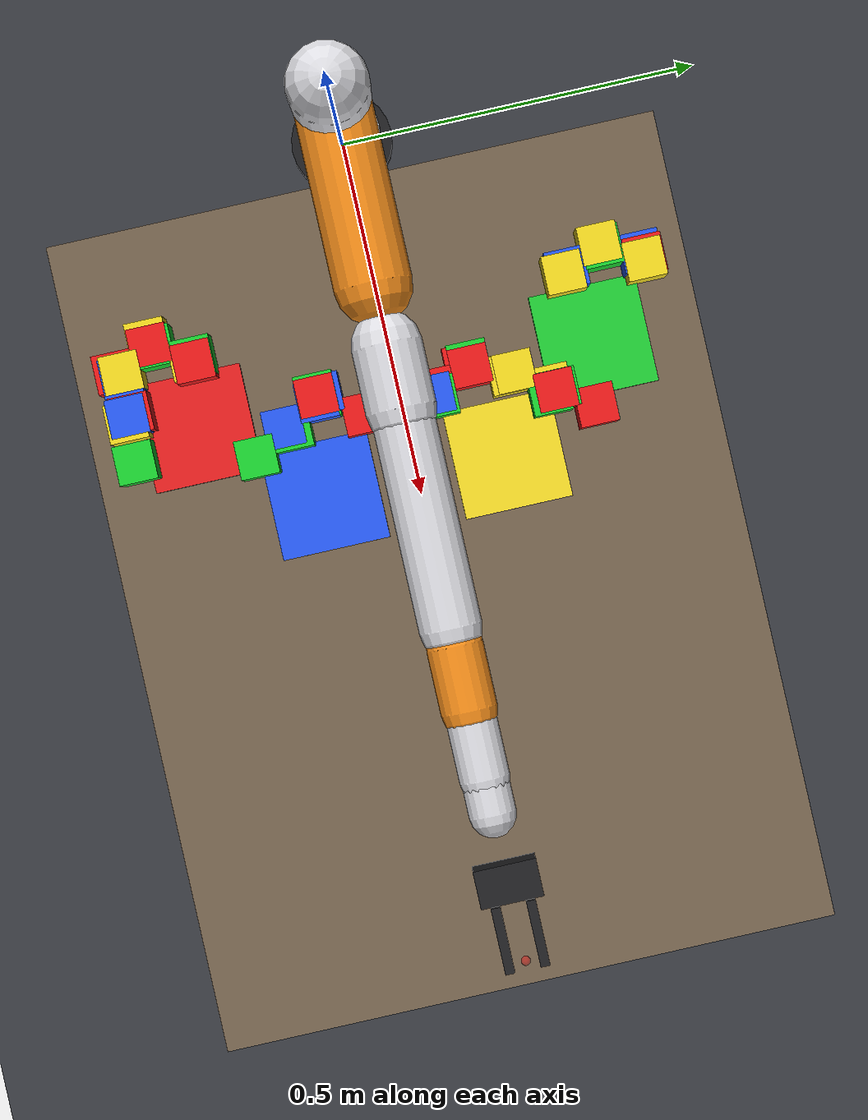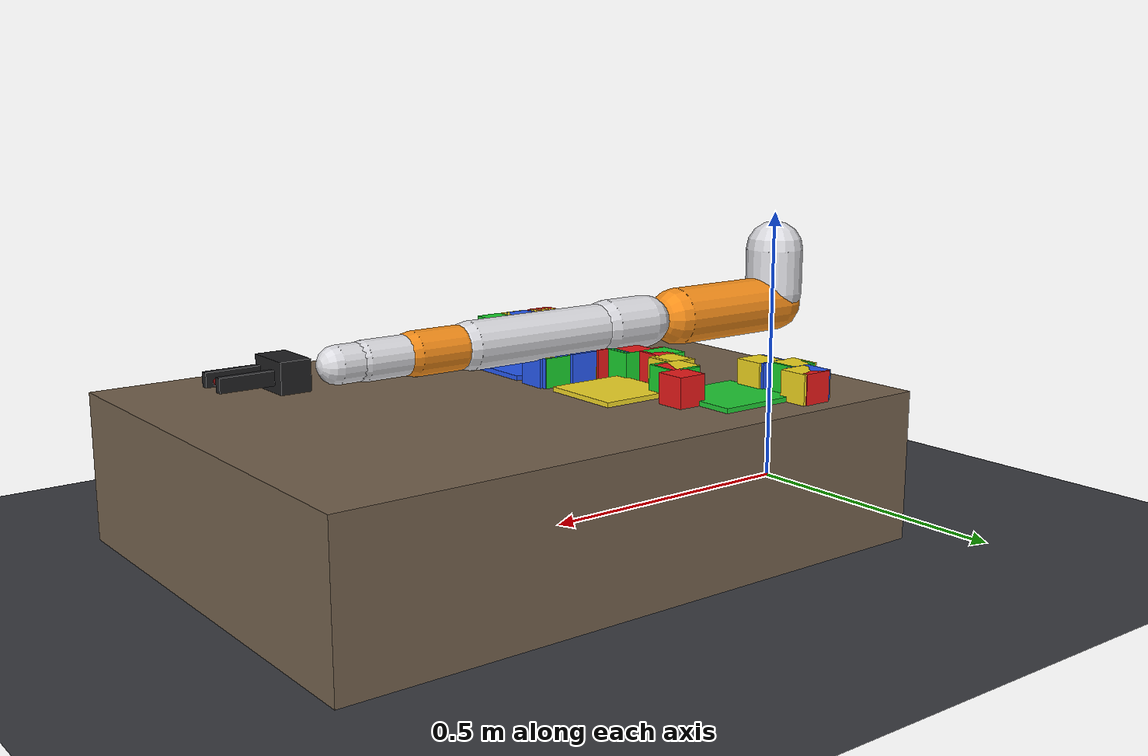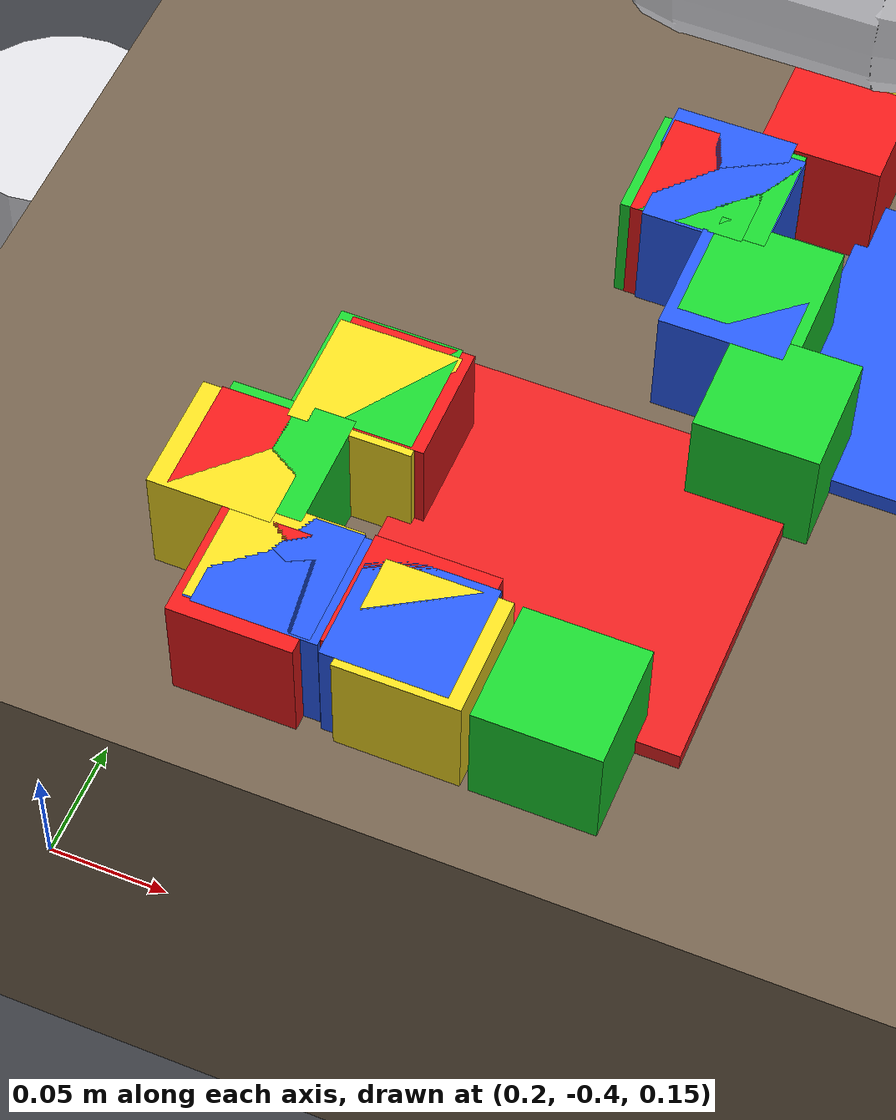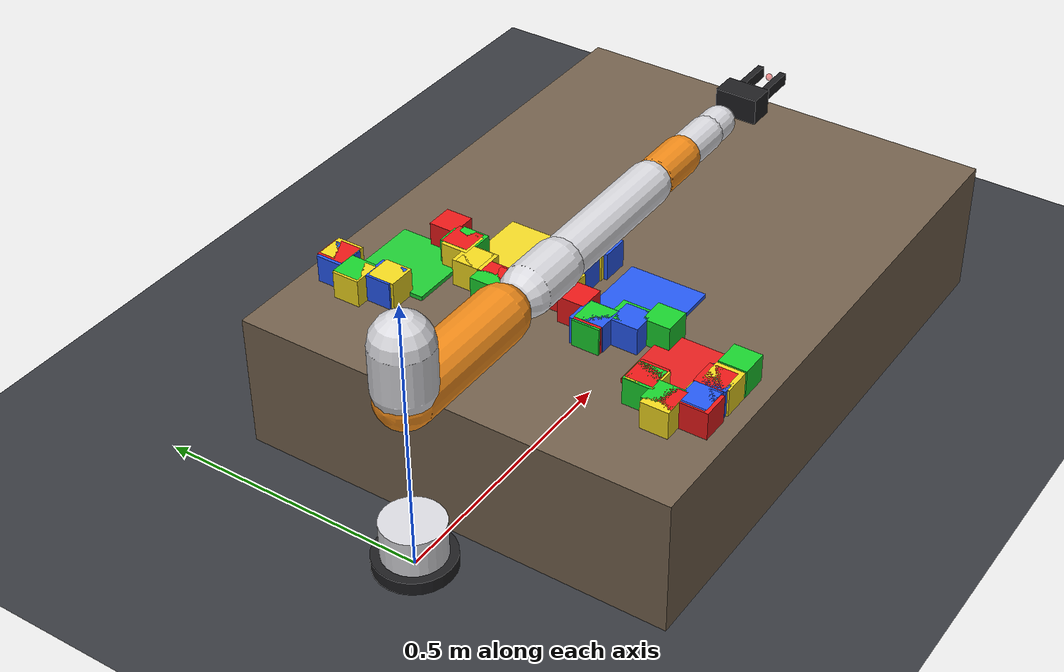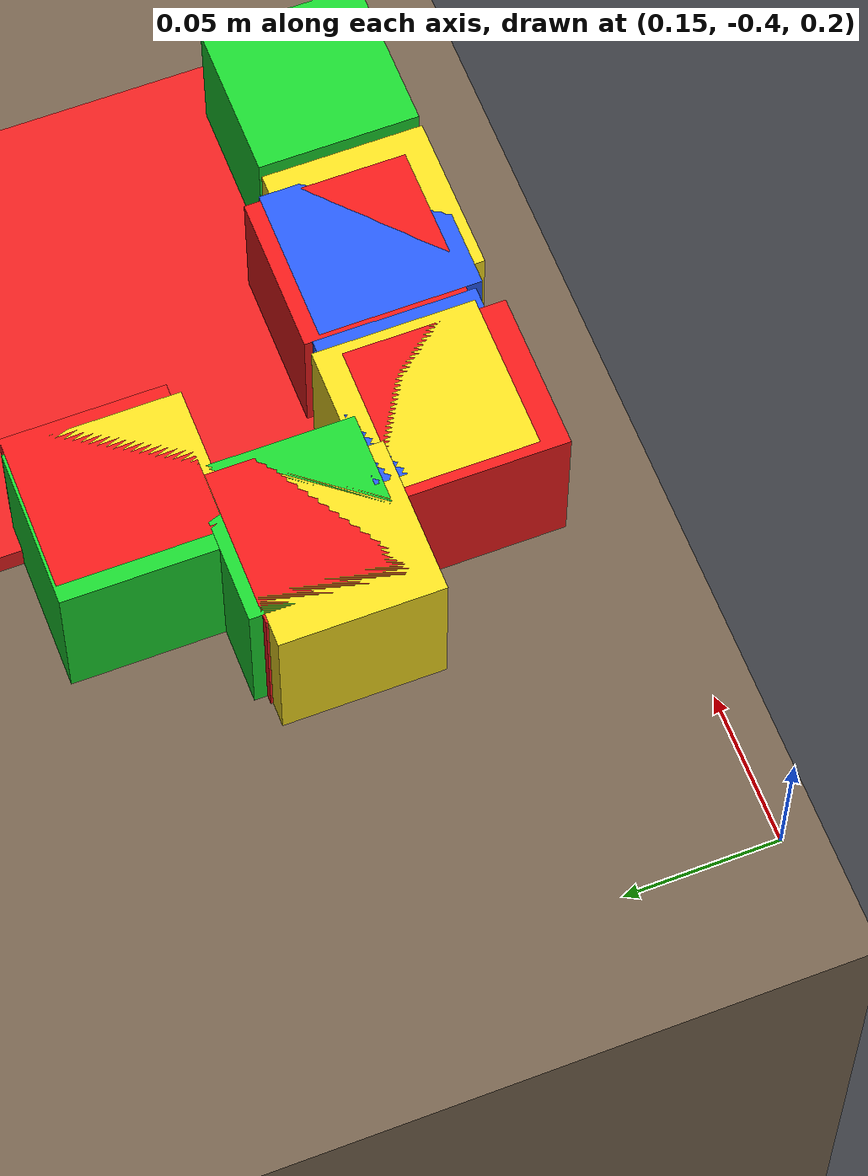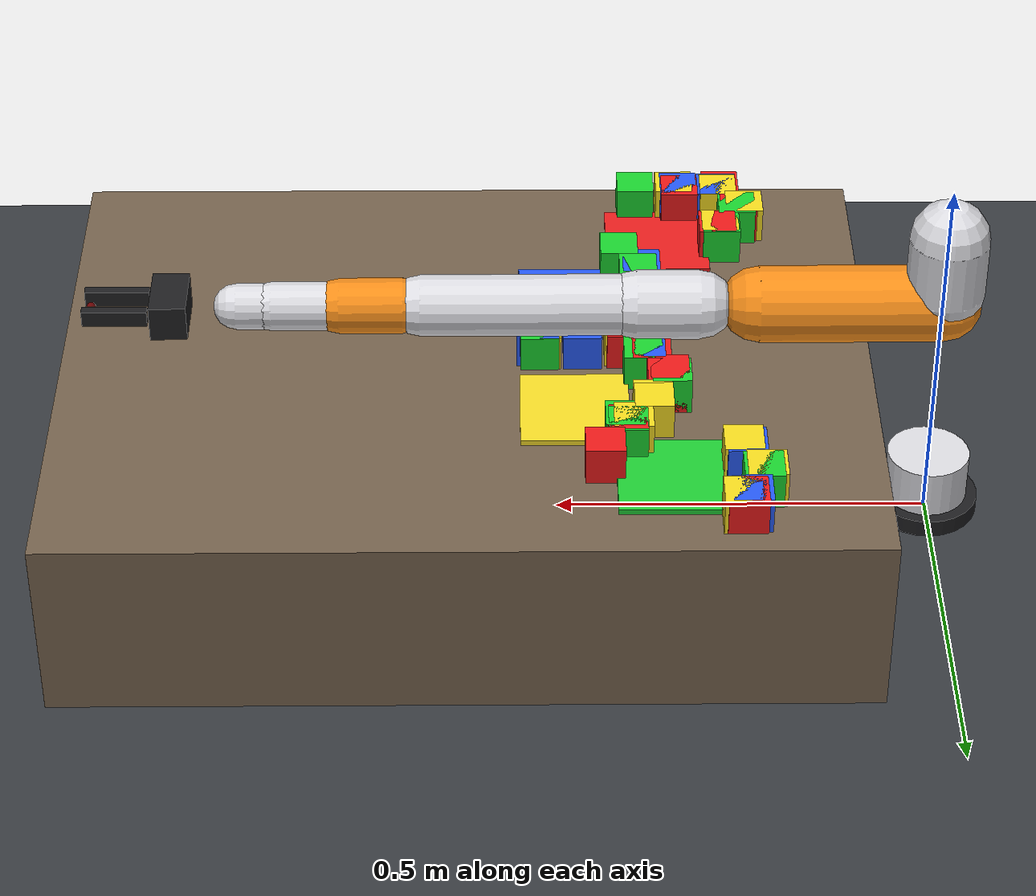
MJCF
marker is replaced by scene/compile_scene.py with N cube bodies.
  Final scenes are compiled to binary .mjb (no XML parsing at app startup).
-->
<mujoco model="panda_cube_sorter">
  <compiler angle="radian" autolimits="true" boundmass="0.01" boundinertia="1e-5"/>

  <option timestep="0.002" integrator="implicitfast" cone="pyramidal"
          solver="Newton" iterations="30" tolerance="1e-8"
          impratio="5" gravity="0 0 -9.81"/>

  <default>
    <joint damping="0.2" armature="0.05" frictionloss="0.15"/>
    <geom solref="0.008 1" solimp="0.95 0.99 0.001" friction="0.6 0.02 0.001" margin="0.0005"/>
    <default class="arm">
      <geom type="capsule" density="900" condim="3"
            contype="1" conaffinity="2"/>
      <joint damping="0.25" armature="0.05" frictionloss="0.2"/>
    </default>
    <default class="finger">
      <geom type="box" density="4000" friction="2.5 0.02 0.001" solref="0.010 1" solimp="0.95 0.99 0.001"
            contype="4" conaffinity="8"/>
      <joint type="slide" damping="60" armature="0.002" frictionloss="0.4"/>
    </default>
    <default class="cube">
      <geom type="box" size="0.025 0.025 0.025" mass="0.08" contype="1" conaffinity="7"
            friction="0.75 0.02 0.002" solref="0.006 1" solimp="0.96 0.995 0.0005"/>
    </default>
    <default class="zone">
      <geom type="box" contype="0" conaffinity="0" density="0"/>
    </default>
  </default>

  <visual>
    <headlight ambient="0.35 0.35 0.35" diffuse="0.55 0.55 0.55" specular="0.15 0.15 0.15"/>
  </visual>

  <asset>
    <texture type="skybox" builtin="flat" rgb1="0.10 0.11 0.13" rgb2="0.10 0.11 0.13" width="32" height="32"/>
    <material name="mat_floor" rgba="0.22 0.23 0.25 1" specular="0.1" shininess="0.2"/>
    <material name="mat_table" rgba="0.45 0.38 0.30 1" specular="0.15" shininess="0.3"/>
    <material name="mat_arm"   rgba="0.85 0.85 0.87 1" specular="0.4" shininess="0.6"/>
    <material name="mat_link2" rgba="0.95 0.55 0.10 1" specular="0.4" shininess="0.6"/>
    <material name="mat_hand"  rgba="0.12 0.12 0.13 1" specular="0.3" shininess="0.5"/>
  </asset>

  <worldbody>
    <light name="top"    pos="0.55 0.0 1.60" dir="0 0 -1" diffuse="0.75 0.75 0.75" specular="0.2 0.2 0.2" castshadow="false"/>
    <light name="fill"   pos="0.2 -0.8 1.20" dir="0.35 0.6 -1" diffuse="0.30 0.30 0.32" castshadow="false"/>
    <geom name="floor" type="plane" size="4 4 0.05" material="mat_floor"/>

    <!-- ============ Panda-class arm (base at origin, front = +x) ============ -->
    <body name="link0" pos="0 0 0">
      <geom name="l0_base" class="arm"  type="cylinder" size="0.055 0.045" pos="0 0 0.045" material="mat_arm"/>
      <geom name="l0_disc" class="arm"  type="cylinder" size="0.070 0.012" pos="0 0 0.012" material="mat_hand"/>
      <body name="link1" pos="0 0 0.333">
        <joint name="joint1" type="hinge" axis="0 0 1" range="-2.8973 2.8973"/>
        <geom name="l1" class="arm" type="capsule" fromto="0 0 0.02 0 0 0.10" size="0.052" material="mat_arm"/>
        <body name="link2" pos="0 0 0">
          <joint name="joint2" type="hinge" axis="0 1 0" range="-1.7628 1.7628"/>
          <geom name="l2" class="arm" type="capsule" fromto="0 0 0 0.24 0 0" size="0.050" material="mat_link2"/>
          <body name="link3" pos="0.316 0 0">
            <joint name="joint3" type="hinge" axis="1 0 0" range="-2.8973 2.8973"/>
            <geom name="l3" class="arm" type="capsule" fromto="0 0 0 0.0825 0 0" size="0.045" material="mat_arm"/>
            <body name="link4" pos="0.0825 0 0">
              <joint name="joint4" type="hinge" axis="0 1 0" range="-3.0718 3.0718"/><!-- simplified: elbow-up branch -->
              <geom name="l4" class="arm" type="capsule" fromto="0 0 0 0.28 0 0" size="0.040" material="mat_arm"/>
              <body name="link5" pos="0.302 0 0">
                <joint name="joint5" type="hinge" axis="1 0 0" range="-2.8973 2.8973"/>
                <geom name="l5" class="arm" type="capsule" fromto="0 0 0 0.0825 0 0" size="0.036" material="mat_link2"/>
                <body name="link6" pos="0.0825 0 0">
                  <joint name="joint6" type="hinge" axis="0 1 0" range="-0.0175 3.7525"/>
                  <geom name="l6" class="arm" type="capsule" fromto="0 0 0 0.088 0 0" size="0.032" material="mat_arm"/>
                  <body name="link7" pos="0.088 0 0">
                    <joint name="joint7" type="hinge" axis="1 0 0" range="-2.8973 2.8973"/>
                    <geom name="l7" class="arm" type="capsule" fromto="0 0 0 0.045 0 0" size="0.030" material="mat_arm"/>
                    <!-- flange + parallel gripper (approach = local +x) -->
                    <body name="hand" pos="0.107 0 0">
                      <geom name="hand_palm" type="box" size="0.024 0.040 0.024" pos="0.024 0 0" material="mat_hand" contype="1" conaffinity="2"/>
                      <site name="tcp" pos="0.126 0 0" size="0.006" rgba="1 0 0 0.4"/>
                      <camera name="cam_grip" pos="0.02 0 0.06" xyaxes="0 0 -1 0 1 0" fovy="90"/>
                      <body name="finger_l" pos="0.052 0.0225 0">
                        <joint name="finger_l_j" type="slide" axis="0 1 0" range="0 0.025"/>
                        <geom name="finger_l_g" size="0.042 0.006 0.011" pos="0.042 0 0" class="finger" material="mat_hand"/>
                      </body>
                      <body name="finger_r" pos="0.052 -0.0225 0">
                        <joint name="finger_r_j" type="slide" axis="0 1 0" range="0 0.025"/>
                        <geom name="finger_r_g" size="0.042 0.006 0.011" pos="0.042 0 0" class="finger" material="mat_hand"/>
                      </body>
                    </body>
                  </body>
                </body>
              </body>
            </body>
          </body>
        </body>
      </body>
    </body>

    <!-- ============ Table + sorting zones ============ -->
    <body name="table" pos="0.62 0 0.125">
      <geom name="table_g" type="box" size="0.53 0.40 0.125" material="mat_table" contype="1" conaffinity="5"/>
      <body name="zone_red"    pos="-0.26 -0.26 0.129">
        <geom name="zone_red_g"    size="0.070 0.070 0.004" rgba="0.90 0.12 0.12 1" class="zone"/>
      </body>
      <body name="zone_green"  pos="-0.26  0.26 0.129">
        <geom name="zone_green_g"  size="0.070 0.070 0.004" rgba="0.12 0.80 0.20 1" class="zone"/>
      </body>
      <body name="zone_blue"   pos="-0.14 -0.12 0.129">
        <geom name="zone_blue_g"   size="0.070 0.070 0.004" rgba="0.15 0.35 0.95 1" class="zone"/>
      </body>
      <body name="zone_yellow" pos="-0.14  0.12 0.129">
        <geom name="zone_yellow_g" size="0.070 0.070 0.004" rgba="0.95 0.85 0.15 1" class="zone"/>
      </body>
    </body>

    <!-- ============ Cubes (injected by compile_scene.py) ============ -->
    <body name="cube_red_0" pos="0.2784 -0.2437 0.2750">
      <freejoint name="free_red_0"/>
      <geom name="geom_red_0" class="cube" rgba="0.92 0.1 0.1 1.0"/>
      <site name="site_red_0" pos="0 0 0" size="0.004" rgba="0.92 0.1 0.1 0.6" type="sphere"/>
    </body>
    <body name="cube_green_1" pos="0.2732 -0.2428 0.2750">
      <freejoint name="free_green_1"/>
      <geom name="geom_green_1" class="cube" rgba="0.1 0.82 0.18 1.0"/>
      <site name="site_green_1" pos="0 0 0" size="0.004" rgba="0.1 0.82 0.18 0.6" type="sphere"/>
    </body>
    <body name="cube_blue_2" pos="0.5290 -0.0047 0.2750">
      <freejoint name="free_blue_2"/>
      <geom name="geom_blue_2" class="cube" rgba="0.15 0.35 0.95 1.0"/>
      <site name="site_blue_2" pos="0 0 0" size="0.004" rgba="0.15 0.35 0.95 0.6" type="sphere"/>
    </body>
    <body name="cube_yellow_3" pos="0.2778 0.3419 0.2750">
      <freejoint name="free_yellow_3"/>
      <geom name="geom_yellow_3" class="cube" rgba="0.95 0.85 0.12 1.0"/>
      <site name="site_yellow_3" pos="0 0 0" size="0.004" rgba="0.95 0.85 0.12 0.6" type="sphere"/>
    </body>
    <body name="cube_red_4" pos="0.2731 0.3431 0.2750">
      <freejoint name="free_red_4"/>
      <geom name="geom_red_4" class="cube" rgba="0.92 0.1 0.1 1.0"/>
      <site name="site_red_4" pos="0 0 0" size="0.004" rgba="0.92 0.1 0.1 0.6" type="sphere"/>
    </body>
    <body name="cube_green_5" pos="0.4147 -0.1916 0.2750">
      <freejoint name="free_green_5"/>
      <geom name="geom_green_5" class="cube" rgba="0.1 0.82 0.18 1.0"/>
      <site name="site_green_5" pos="0 0 0" size="0.004" rgba="0.1 0.82 0.18 0.6" type="sphere"/>
    </body>
    <body name="cube_blue_6" pos="0.5241 0.0040 0.2750">
      <freejoint name="free_blue_6"/>
      <geom name="geom_blue_6" class="cube" rgba="0.15 0.35 0.95 1.0"/>
      <site name="site_blue_6" pos="0 0 0" size="0.004" rgba="0.15 0.35 0.95 0.6" type="sphere"/>
    </body>
    <body name="cube_yellow_7" pos="0.2731 -0.3355 0.2750">
      <freejoint name="free_yellow_7"/>
      <geom name="geom_yellow_7" class="cube" rgba="0.95 0.85 0.12 1.0"/>
      <site name="site_yellow_7" pos="0 0 0" size="0.004" rgba="0.95 0.85 0.12 0.6" type="sphere"/>
    </body>
    <body name="cube_red_8" pos="0.4113 0.0007 0.2750">
      <freejoint name="free_red_8"/>
      <geom name="geom_red_8" class="cube" rgba="0.92 0.1 0.1 1.0"/>
      <site name="site_red_8" pos="0 0 0" size="0.004" rgba="0.92 0.1 0.1 0.6" type="sphere"/>
    </body>
    <body name="cube_green_9" pos="0.5239 0.0045 0.2750">
      <freejoint name="free_green_9"/>
      <geom name="geom_green_9" class="cube" rgba="0.1 0.82 0.18 1.0"/>
      <site name="site_green_9" pos="0 0 0" size="0.004" rgba="0.1 0.82 0.18 0.6" type="sphere"/>
    </body>
    <body name="cube_blue_10" pos="0.3282 -0.3398 0.2750">
      <freejoint name="free_blue_10"/>
      <geom name="geom_blue_10" class="cube" rgba="0.15 0.35 0.95 1.0"/>
      <site name="site_blue_10" pos="0 0 0" size="0.004" rgba="0.15 0.35 0.95 0.6" type="sphere"/>
    </body>
    <body name="cube_yellow_11" pos="0.3344 -0.3430 0.2750">
      <freejoint name="free_yellow_11"/>
      <geom name="geom_yellow_11" class="cube" rgba="0.95 0.85 0.12 1.0"/>
      <site name="site_yellow_11" pos="0 0 0" size="0.004" rgba="0.95 0.85 0.12 0.6" type="sphere"/>
    </body>
    <body name="cube_red_12" pos="0.4151 0.1961 0.2750">
      <freejoint name="free_red_12"/>
      <geom name="geom_red_12" class="cube" rgba="0.92 0.1 0.1 1.0"/>
      <site name="site_red_12" pos="0 0 0" size="0.004" rgba="0.92 0.1 0.1 0.6" type="sphere"/>
    </body>
    <body name="cube_green_13" pos="0.4146 0.1991 0.2750">
      <freejoint name="free_green_13"/>
      <geom name="geom_green_13" class="cube" rgba="0.1 0.82 0.18 1.0"/>
      <site name="site_green_13" pos="0 0 0" size="0.004" rgba="0.1 0.82 0.18 0.6" type="sphere"/>
    </body>
    <body name="cube_blue_14" pos="0.3871 0.0438 0.2750">
      <freejoint name="free_blue_14"/>
      <geom name="geom_blue_14" class="cube" rgba="0.15 0.35 0.95 1.0"/>
      <site name="site_blue_14" pos="0 0 0" size="0.004" rgba="0.15 0.35 0.95 0.6" type="sphere"/>
    </body>
    <body name="cube_yellow_15" pos="0.2723 0.2388 0.2750">
      <freejoint name="free_yellow_15"/>
      <geom name="geom_yellow_15" class="cube" rgba="0.95 0.85 0.12 1.0"/>
      <site name="site_yellow_15" pos="0 0 0" size="0.004" rgba="0.95 0.85 0.12 0.6" type="sphere"/>
    </body>
    <body name="cube_red_16" pos="0.3558 -0.1011 0.2750">
      <freejoint name="free_red_16"/>
      <geom name="geom_red_16" class="cube" rgba="0.92 0.1 0.1 1.0"/>
      <site name="site_red_16" pos="0 0 0" size="0.004" rgba="0.92 0.1 0.1 0.6" type="sphere"/>
    </body>
    <body name="cube_green_17" pos="0.3516 -0.1010 0.2750">
      <freejoint name="free_green_17"/>
      <geom name="geom_green_17" class="cube" rgba="0.1 0.82 0.18 1.0"/>
      <site name="site_green_17" pos="0 0 0" size="0.004" rgba="0.1 0.82 0.18 0.6" type="sphere"/>
    </body>
    <body name="cube_blue_18" pos="0.3611 -0.1022 0.2750">
      <freejoint name="free_blue_18"/>
      <geom name="geom_blue_18" class="cube" rgba="0.15 0.35 0.95 1.0"/>
      <site name="site_blue_18" pos="0 0 0" size="0.004" rgba="0.15 0.35 0.95 0.6" type="sphere"/>
    </body>
    <body name="cube_yellow_19" pos="0.2462 0.2902 0.2750">
      <freejoint name="free_yellow_19"/>
      <geom name="geom_yellow_19" class="cube" rgba="0.95 0.85 0.12 1.0"/>
      <site name="site_yellow_19" pos="0 0 0" size="0.004" rgba="0.95 0.85 0.12 0.6" type="sphere"/>
    </body>
    <body name="cube_red_20" pos="0.2469 -0.2938 0.2750">
      <freejoint name="free_red_20"/>
      <geom name="geom_red_20" class="cube" rgba="0.92 0.1 0.1 1.0"/>
      <site name="site_red_20" pos="0 0 0" size="0.004" rgba="0.92 0.1 0.1 0.6" type="sphere"/>
    </body>
    <body name="cube_green_21" pos="0.3905 0.0476 0.2750">
      <freejoint name="free_green_21"/>
      <geom name="geom_green_21" class="cube" rgba="0.1 0.82 0.18 1.0"/>
      <site name="site_green_21" pos="0 0 0" size="0.004" rgba="0.1 0.82 0.18 0.6" type="sphere"/>
    </body>
    <body name="cube_blue_22" pos="0.3858 -0.1503 0.2750">
      <freejoint name="free_blue_22"/>
      <geom name="geom_blue_22" class="cube" rgba="0.15 0.35 0.95 1.0"/>
      <site name="site_blue_22" pos="0 0 0" size="0.004" rgba="0.15 0.35 0.95 0.6" type="sphere"/>
    </body>
    <body name="cube_yellow_23" pos="0.2746 -0.2468 0.2750">
      <freejoint name="free_yellow_23"/>
      <geom name="geom_yellow_23" class="cube" rgba="0.95 0.85 0.12 1.0"/>
      <site name="site_yellow_23" pos="0 0 0" size="0.004" rgba="0.95 0.85 0.12 0.6" type="sphere"/>
    </body>
    <body name="cube_red_24" pos="0.3797 0.0469 0.2750">
      <freejoint name="free_red_24"/>
      <geom name="geom_red_24" class="cube" rgba="0.92 0.1 0.1 1.0"/>
      <site name="site_red_24" pos="0 0 0" size="0.004" rgba="0.92 0.1 0.1 0.6" type="sphere"/>
    </body>
    <body name="cube_green_25" pos="0.2496 -0.2898 0.2750">
      <freejoint name="free_green_25"/>
      <geom name="geom_green_25" class="cube" rgba="0.1 0.82 0.18 1.0"/>
      <site name="site_green_25" pos="0 0 0" size="0.004" rgba="0.1 0.82 0.18 0.6" type="sphere"/>
    </body>
    <body name="cube_blue_26" pos="0.2768 -0.3372 0.2750">
      <freejoint name="free_blue_26"/>
      <geom name="geom_blue_26" class="cube" rgba="0.15 0.35 0.95 1.0"/>
      <site name="site_blue_26" pos="0 0 0" size="0.004" rgba="0.15 0.35 0.95 0.6" type="sphere"/>
    </body>
    <body name="cube_yellow_27" pos="0.3804 0.1499 0.2750">
      <freejoint name="free_yellow_27"/>
      <geom name="geom_yellow_27" class="cube" rgba="0.95 0.85 0.12 1.0"/>
      <site name="site_yellow_27" pos="0 0 0" size="0.004" rgba="0.95 0.85 0.12 0.6" type="sphere"/>
    </body>
    <body name="cube_red_28" pos="0.3615 0.0967 0.2750">
      <freejoint name="free_red_28"/>
      <geom name="geom_red_28" class="cube" rgba="0.92 0.1 0.1 1.0"/>
      <site name="site_red_28" pos="0 0 0" size="0.004" rgba="0.92 0.1 0.1 0.6" type="sphere"/>
    </body>
    <body name="cube_green_29" pos="0.4180 0.1880 0.2750">
      <freejoint name="free_green_29"/>
      <geom name="geom_green_29" class="cube" rgba="0.1 0.82 0.18 1.0"/>
      <site name="site_green_29" pos="0 0 0" size="0.004" rgba="0.1 0.82 0.18 0.6" type="sphere"/>
    </body>
    <body name="cube_blue_30" pos="0.3549 -0.0945 0.2750">
      <freejoint name="free_blue_30"/>
      <geom name="geom_blue_30" class="cube" rgba="0.15 0.35 0.95 1.0"/>
      <site name="site_blue_30" pos="0 0 0" size="0.004" rgba="0.15 0.35 0.95 0.6" type="sphere"/>
    </body>
    <body name="cube_yellow_31" pos="0.2392 -0.2945 0.2750">
      <freejoint name="free_yellow_31"/>
      <geom name="geom_yellow_31" class="cube" rgba="0.95 0.85 0.12 1.0"/>
      <site name="site_yellow_31" pos="0 0 0" size="0.004" rgba="0.95 0.85 0.12 0.6" type="sphere"/>
    </body>
    <body name="cube_red_32" pos="0.2700 -0.3437 0.2750">
      <freejoint name="free_red_32"/>
      <geom name="geom_red_32" class="cube" rgba="0.92 0.1 0.1 1.0"/>
      <site name="site_red_32" pos="0 0 0" size="0.004" rgba="0.92 0.1 0.1 0.6" type="sphere"/>
    </body>
    <body name="cube_green_33" pos="0.2506 0.2923 0.2750">
      <freejoint name="free_green_33"/>
      <geom name="geom_green_33" class="cube" rgba="0.1 0.82 0.18 1.0"/>
      <site name="site_green_33" pos="0 0 0" size="0.004" rgba="0.1 0.82 0.18 0.6" type="sphere"/>
    </body>
    <body name="cube_blue_34" pos="0.2675 0.3400 0.2750">
      <freejoint name="free_blue_34"/>
      <geom name="geom_blue_34" class="cube" rgba="0.15 0.35 0.95 1.0"/>
      <site name="site_blue_34" pos="0 0 0" size="0.004" rgba="0.15 0.35 0.95 0.6" type="sphere"/>
    </body>
    <body name="cube_yellow_35" pos="0.5210 0.0016 0.2750">
      <freejoint name="free_yellow_35"/>
      <geom name="geom_yellow_35" class="cube" rgba="0.95 0.85 0.12 1.0"/>
      <site name="site_yellow_35" pos="0 0 0" size="0.004" rgba="0.95 0.85 0.12 0.6" type="sphere"/>
    </body>
    <body name="cube_red_36" pos="0.3267 -0.3347 0.2750">
      <freejoint name="free_red_36"/>
      <geom name="geom_red_36" class="cube" rgba="0.92 0.1 0.1 1.0"/>
      <site name="site_red_36" pos="0 0 0" size="0.004" rgba="0.92 0.1 0.1 0.6" type="sphere"/>
    </body>
    <body name="cube_green_37" pos="0.3553 0.0967 0.2750">
      <freejoint name="free_green_37"/>
      <geom name="geom_green_37" class="cube" rgba="0.1 0.82 0.18 1.0"/>
      <site name="site_green_37" pos="0 0 0" size="0.004" rgba="0.1 0.82 0.18 0.6" type="sphere"/>
    </body>
    <body name="cube_blue_38" pos="0.2735 -0.3363 0.2750">
      <freejoint name="free_blue_38"/>
      <geom name="geom_blue_38" class="cube" rgba="0.15 0.35 0.95 1.0"/>
      <site name="site_blue_38" pos="0 0 0" size="0.004" rgba="0.15 0.35 0.95 0.6" type="sphere"/>
    </body>
    <body name="cube_yellow_39" pos="0.4143 -0.0042 0.2750">
      <freejoint name="free_yellow_39"/>
      <geom name="geom_yellow_39" class="cube" rgba="0.95 0.85 0.12 1.0"/>
      <site name="site_yellow_39" pos="0 0 0" size="0.004" rgba="0.95 0.85 0.12 0.6" type="sphere"/>
    </body>
    <body name="cube_red_40" pos="0.3579 0.0909 0.2750">
      <freejoint name="free_red_40"/>
      <geom name="geom_red_40" class="cube" rgba="0.92 0.1 0.1 1.0"/>
      <site name="site_red_40" pos="0 0 0" size="0.004" rgba="0.92 0.1 0.1 0.6" type="sphere"/>
    </body>
    <body name="cube_green_41" pos="0.3905 -0.1418 0.2750">
      <freejoint name="free_green_41"/>
      <geom name="geom_green_41" class="cube" rgba="0.1 0.82 0.18 1.0"/>
      <site name="site_green_41" pos="0 0 0" size="0.004" rgba="0.1 0.82 0.18 0.6" type="sphere"/>
    </body>
    <body name="cube_blue_42" pos="0.4680 0.0033 0.2750">
      <freejoint name="free_blue_42"/>
      <geom name="geom_blue_42" class="cube" rgba="0.15 0.35 0.95 1.0"/>
      <site name="site_blue_42" pos="0 0 0" size="0.004" rgba="0.15 0.35 0.95 0.6" type="sphere"/>
    </body>
    <body name="cube_yellow_43" pos="0.4076 0.1915 0.2750">
      <freejoint name="free_yellow_43"/>
      <geom name="geom_yellow_43" class="cube" rgba="0.95 0.85 0.12 1.0"/>
      <site name="site_yellow_43" pos="0 0 0" size="0.004" rgba="0.95 0.85 0.12 0.6" type="sphere"/>
    </body>
    <body name="cube_red_44" pos="0.4445 0.2421 0.2750">
      <freejoint name="free_red_44"/>
      <geom name="geom_red_44" class="cube" rgba="0.92 0.1 0.1 1.0"/>
      <site name="site_red_44" pos="0 0 0" size="0.004" rgba="0.92 0.1 0.1 0.6" type="sphere"/>
    </body>
    <body name="cube_green_45" pos="0.3877 -0.3433 0.2750">
      <freejoint name="free_green_45"/>
      <geom name="geom_green_45" class="cube" rgba="0.1 0.82 0.18 1.0"/>
      <site name="site_green_45" pos="0 0 0" size="0.004" rgba="0.1 0.82 0.18 0.6" type="sphere"/>
    </body>
    <body name="cube_blue_46" pos="0.2684 0.2435 0.2750">
      <freejoint name="free_blue_46"/>
      <geom name="geom_blue_46" class="cube" rgba="0.15 0.35 0.95 1.0"/>
      <site name="site_blue_46" pos="0 0 0" size="0.004" rgba="0.15 0.35 0.95 0.6" type="sphere"/>
    </body>
    <body name="cube_yellow_47" pos="0.3812 0.1431 0.2750">
      <freejoint name="free_yellow_47"/>
      <geom name="geom_yellow_47" class="cube" rgba="0.95 0.85 0.12 1.0"/>
      <site name="site_yellow_47" pos="0 0 0" size="0.004" rgba="0.95 0.85 0.12 0.6" type="sphere"/>
    </body>
    <body name="cube_red_48" pos="0.3904 -0.0481 0.2750">
      <freejoint name="free_red_48"/>
      <geom name="geom_red_48" class="cube" rgba="0.92 0.1 0.1 1.0"/>
      <site name="site_red_48" pos="0 0 0" size="0.004" rgba="0.92 0.1 0.1 0.6" type="sphere"/>
    </body>
    <body name="cube_green_49" pos="0.3606 -0.0998 0.2750">
      <freejoint name="free_green_49"/>
      <geom name="geom_green_49" class="cube" rgba="0.1 0.82 0.18 1.0"/>
      <site name="site_green_49" pos="0 0 0" size="0.004" rgba="0.1 0.82 0.18 0.6" type="sphere"/>
    </body>

    <!-- ============ Cameras ============ -->
    <camera name="cam_event" pos="0.42 0 1.05" xyaxes="1 0 0 0 1 0" fovy="78"/>
    <camera name="cam_track" mode="targetbody" target="table" pos="1.45 -1.25 0.95" fovy="55"/>
  </worldbody>

  <tendon>
    <fixed name="grip_tendon">
      <joint joint="finger_l_j" coef="1"/>
      <joint joint="finger_r_j" coef="1"/>
    </fixed>
  </tendon>

  <actuator>
    <motor name="m1" joint="joint1" gear="1" ctrlrange="-87 87"/>
    <motor name="m2" joint="joint2" gear="1" ctrlrange="-87 87"/>
    <motor name="m3" joint="joint3" gear="1" ctrlrange="-87 87"/>
    <motor name="m4" joint="joint4" gear="1" ctrlrange="-87 87"/>
    <motor name="m5" joint="joint5" gear="1" ctrlrange="-12 12"/>
    <motor name="m6" joint="joint6" gear="1" ctrlrange="-12 12"/>
    <motor name="m7" joint="joint7" gear="1" ctrlrange="-12 12"/>
    <position name="grip_act" tendon="grip_tendon" kp="120" ctrlrange="0 0.05"/>
  </actuator>
</mujoco>
